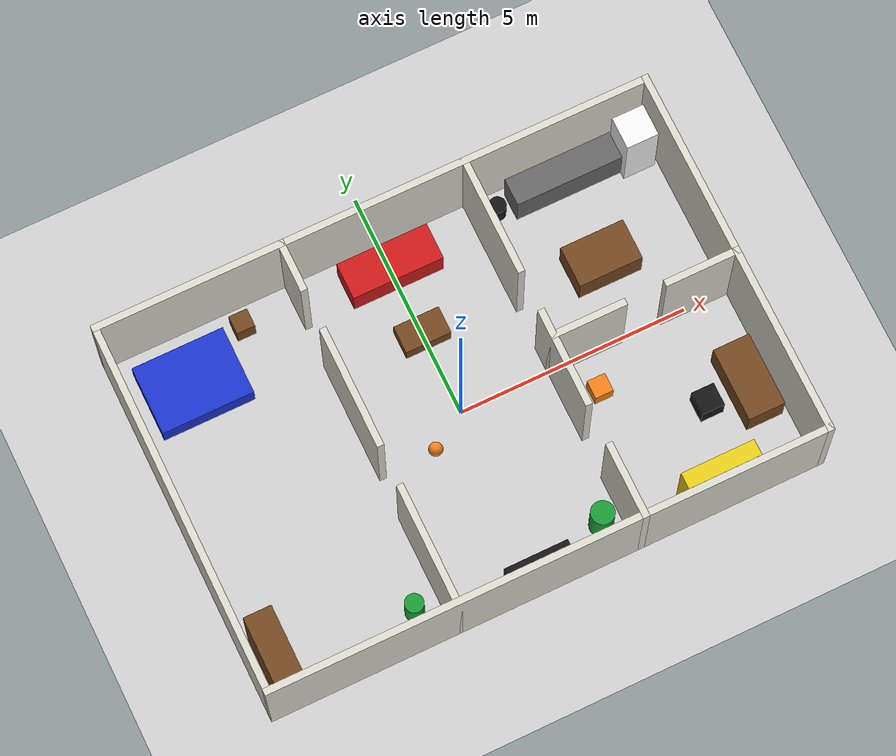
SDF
<?xml version="1.0"?>
<sdf version="1.6">
  <world name="indoor_house">
    <include><uri>model://sun</uri></include>
    <include><uri>model://ground_plane</uri></include>
    <physics type="ode">
      <max_step_size>0.004</max_step_size>
      <real_time_update_rate>250</real_time_update_rate>
    </physics>
    <scene><ambient>0.5 0.5 0.5 1</ambient><shadows>false</shadows></scene>
    <gravity>0 0 -9.8</gravity>
    <!-- ceiling-less so the sun lights the rooms -->
    <model name="wall_1">
      <static>true</static>
      <pose>0.0 4.0 1.25 0 0 0.0</pose>
      <link name="link">
        <collision name="c"><geometry><box><size>12.15 0.15 2.5</size></box></geometry></collision>
        <visual name="v"><geometry><box><size>12.15 0.15 2.5</size></box></geometry>
          <material><ambient>0.85 0.85 0.8 1</ambient><diffuse>0.85 0.85 0.8 1</diffuse></material></visual>
      </link>
    </model>
    <model name="wall_2">
      <static>true</static>
      <pose>0.0 -4.0 1.25 0 0 0.0</pose>
      <link name="link">
        <collision name="c"><geometry><box><size>12.15 0.15 2.5</size></box></geometry></collision>
        <visual name="v"><geometry><box><size>12.15 0.15 2.5</size></box></geometry>
          <material><ambient>0.85 0.85 0.8 1</ambient><diffuse>0.85 0.85 0.8 1</diffuse></material></visual>
      </link>
    </model>
    <model name="wall_3">
      <static>true</static>
      <pose>-6.0 0.0 1.25 0 0 0.0</pose>
      <link name="link">
        <collision name="c"><geometry><box><size>0.15 8.15 2.5</size></box></geometry></collision>
        <visual name="v"><geometry><box><size>0.15 8.15 2.5</size></box></geometry>
          <material><ambient>0.85 0.85 0.8 1</ambient><diffuse>0.85 0.85 0.8 1</diffuse></material></visual>
      </link>
    </model>
    <model name="wall_4">
      <static>true</static>
      <pose>6.0 0.0 1.25 0 0 0.0</pose>
      <link name="link">
        <collision name="c"><geometry><box><size>0.15 8.15 2.5</size></box></geometry></collision>
        <visual name="v"><geometry><box><size>0.15 8.15 2.5</size></box></geometry>
          <material><ambient>0.85 0.85 0.8 1</ambient><diffuse>0.85 0.85 0.8 1</diffuse></material></visual>
      </link>
    </model>
    <model name="wall_5">
      <static>true</static>
      <pose>-2.0 -2.75 1.25 0 0 0.0</pose>
      <link name="link">
        <collision name="c"><geometry><box><size>0.15 2.65 2.5</size></box></geometry></collision>
        <visual name="v"><geometry><box><size>0.15 2.65 2.5</size></box></geometry>
          <material><ambient>0.85 0.85 0.8 1</ambient><diffuse>0.85 0.85 0.8 1</diffuse></material></visual>
      </link>
    </model>
    <model name="wall_6">
      <static>true</static>
      <pose>-2.0 0.75 1.25 0 0 0.0</pose>
      <link name="link">
        <collision name="c"><geometry><box><size>0.15 2.65 2.5</size></box></geometry></collision>
        <visual name="v"><geometry><box><size>0.15 2.65 2.5</size></box></geometry>
          <material><ambient>0.85 0.85 0.8 1</ambient><diffuse>0.85 0.85 0.8 1</diffuse></material></visual>
      </link>
    </model>
    <model name="wall_7">
      <static>true</static>
      <pose>-2.0 3.5 1.25 0 0 0.0</pose>
      <link name="link">
        <collision name="c"><geometry><box><size>0.15 1.15 2.5</size></box></geometry></collision>
        <visual name="v"><geometry><box><size>0.15 1.15 2.5</size></box></geometry>
          <material><ambient>0.85 0.85 0.8 1</ambient><diffuse>0.85 0.85 0.8 1</diffuse></material></visual>
      </link>
    </model>
    <model name="wall_8">
      <static>true</static>
      <pose>2.0 -3.25 1.25 0 0 0.0</pose>
      <link name="link">
        <collision name="c"><geometry><box><size>0.15 1.65 2.5</size></box></geometry></collision>
        <visual name="v"><geometry><box><size>0.15 1.65 2.5</size></box></geometry>
          <material><ambient>0.85 0.85 0.8 1</ambient><diffuse>0.85 0.85 0.8 1</diffuse></material></visual>
      </link>
    </model>
    <model name="wall_9">
      <static>true</static>
      <pose>2.0 -0.5 1.25 0 0 0.0</pose>
      <link name="link">
        <collision name="c"><geometry><box><size>0.15 2.15 2.5</size></box></geometry></collision>
        <visual name="v"><geometry><box><size>0.15 2.15 2.5</size></box></geometry>
          <material><ambient>0.85 0.85 0.8 1</ambient><diffuse>0.85 0.85 0.8 1</diffuse></material></visual>
      </link>
    </model>
    <model name="wall_10">
      <static>true</static>
      <pose>2.0 2.75 1.25 0 0 0.0</pose>
      <link name="link">
        <collision name="c"><geometry><box><size>0.15 2.65 2.5</size></box></geometry></collision>
        <visual name="v"><geometry><box><size>0.15 2.65 2.5</size></box></geometry>
          <material><ambient>0.85 0.85 0.8 1</ambient><diffuse>0.85 0.85 0.8 1</diffuse></material></visual>
      </link>
    </model>
    <model name="wall_11">
      <static>true</static>
      <pose>2.75 0.0 1.25 0 0 0.0</pose>
      <link name="link">
        <collision name="c"><geometry><box><size>1.65 0.15 2.5</size></box></geometry></collision>
        <visual name="v"><geometry><box><size>1.65 0.15 2.5</size></box></geometry>
          <material><ambient>0.85 0.85 0.8 1</ambient><diffuse>0.85 0.85 0.8 1</diffuse></material></visual>
      </link>
    </model>
    <model name="wall_12">
      <static>true</static>
      <pose>5.25 0.0 1.25 0 0 0.0</pose>
      <link name="link">
        <collision name="c"><geometry><box><size>1.65 0.15 2.5</size></box></geometry></collision>
        <visual name="v"><geometry><box><size>1.65 0.15 2.5</size></box></geometry>
          <material><ambient>0.85 0.85 0.8 1</ambient><diffuse>0.85 0.85 0.8 1</diffuse></material></visual>
      </link>
    </model>
    <model name="bed">
      <static>true</static>
      <pose>-4.6 2.8 0.25 0 0 0.0</pose>
      <link name="link">
        <collision name="c"><geometry><box><size>2.0 1.5 0.5</size></box></geometry></collision>
        <visual name="v"><geometry><box><size>2.0 1.5 0.5</size></box></geometry>
          <material><ambient>0.1 0.2 0.8 1</ambient><diffuse>0.1 0.2 0.8 1</diffuse></material></visual>
      </link>
    </model>
    <model name="wardrobe">
      <static>true</static>
      <pose>-5.5 -3.2 1.0 0 0 0.0</pose>
      <link name="link">
        <collision name="c"><geometry><box><size>0.6 1.6 2.0</size></box></geometry></collision>
        <visual name="v"><geometry><box><size>0.6 1.6 2.0</size></box></geometry>
          <material><ambient>0.45 0.28 0.12 1</ambient><diffuse>0.45 0.28 0.12 1</diffuse></material></visual>
      </link>
    </model>
    <model name="nightstand">
      <static>true</static>
      <pose>-3.2 3.5 0.25 0 0 0.0</pose>
      <link name="link">
        <collision name="c"><geometry><box><size>0.4 0.4 0.5</size></box></geometry></collision>
        <visual name="v"><geometry><box><size>0.4 0.4 0.5</size></box></geometry>
          <material><ambient>0.45 0.28 0.12 1</ambient><diffuse>0.45 0.28 0.12 1</diffuse></material></visual>
      </link>
    </model>
    <model name="plant_bedroom">
      <static>true</static>
      <pose>-2.6 -3.3 0.4 0 0 0</pose>
      <link name="link">
        <collision name="c"><geometry><cylinder><radius>0.2</radius><length>0.8</length></cylinder></geometry></collision>
        <visual name="v"><geometry><cylinder><radius>0.2</radius><length>0.8</length></cylinder></geometry>
          <material><ambient>0.1 0.6 0.2 1</ambient><diffuse>0.1 0.6 0.2 1</diffuse></material></visual>
      </link>
    </model>
    <model name="sofa">
      <static>true</static>
      <pose>0.0 3.3 0.35 0 0 0.0</pose>
      <link name="link">
        <collision name="c"><geometry><box><size>2.0 0.8 0.7</size></box></geometry></collision>
        <visual name="v"><geometry><box><size>2.0 0.8 0.7</size></box></geometry>
          <material><ambient>0.8 0.1 0.1 1</ambient><diffuse>0.8 0.1 0.1 1</diffuse></material></visual>
      </link>
    </model>
    <model name="coffee_table">
      <static>true</static>
      <pose>0.0 1.8 0.2 0 0 0.0</pose>
      <link name="link">
        <collision name="c"><geometry><box><size>1.0 0.6 0.4</size></box></geometry></collision>
        <visual name="v"><geometry><box><size>1.0 0.6 0.4</size></box></geometry>
          <material><ambient>0.45 0.28 0.12 1</ambient><diffuse>0.45 0.28 0.12 1</diffuse></material></visual>
      </link>
    </model>
    <model name="tv_stand">
      <static>true</static>
      <pose>0.0 -3.6 0.3 0 0 0.0</pose>
      <link name="link">
        <collision name="c"><geometry><box><size>1.4 0.4 0.6</size></box></geometry></collision>
        <visual name="v"><geometry><box><size>1.4 0.4 0.6</size></box></geometry>
          <material><ambient>0.08 0.08 0.08 1</ambient><diffuse>0.08 0.08 0.08 1</diffuse></material></visual>
      </link>
    </model>
    <model name="plant_living">
      <static>true</static>
      <pose>1.5 -3.3 0.5 0 0 0</pose>
      <link name="link">
        <collision name="c"><geometry><cylinder><radius>0.25</radius><length>1.0</length></cylinder></geometry></collision>
        <visual name="v"><geometry><cylinder><radius>0.25</radius><length>1.0</length></cylinder></geometry>
          <material><ambient>0.1 0.6 0.2 1</ambient><diffuse>0.1 0.6 0.2 1</diffuse></material></visual>
      </link>
    </model>
    <model name="ball">
      <static>true</static>
      <pose>-0.8 -0.5 0.15 0 0 0</pose>
      <link name="link">
        <collision name="c"><geometry><sphere><radius>0.15</radius></sphere></geometry></collision>
        <visual name="v"><geometry><sphere><radius>0.15</radius></sphere></geometry>
          <material><ambient>0.95 0.5 0.1 1</ambient><diffuse>0.95 0.5 0.1 1</diffuse></material></visual>
      </link>
    </model>
    <model name="fridge">
      <static>true</static>
      <pose>5.5 3.4 0.9 0 0 0.0</pose>
      <link name="link">
        <collision name="c"><geometry><box><size>0.7 0.7 1.8</size></box></geometry></collision>
        <visual name="v"><geometry><box><size>0.7 0.7 1.8</size></box></geometry>
          <material><ambient>0.95 0.95 0.95 1</ambient><diffuse>0.95 0.95 0.95 1</diffuse></material></visual>
      </link>
    </model>
    <model name="kitchen_counter">
      <static>true</static>
      <pose>4.0 3.5 0.45 0 0 0.0</pose>
      <link name="link">
        <collision name="c"><geometry><box><size>2.4 0.6 0.9</size></box></geometry></collision>
        <visual name="v"><geometry><box><size>2.4 0.6 0.9</size></box></geometry>
          <material><ambient>0.4 0.4 0.4 1</ambient><diffuse>0.4 0.4 0.4 1</diffuse></material></visual>
      </link>
    </model>
    <model name="dining_table">
      <static>true</static>
      <pose>3.9 1.6 0.375 0 0 0.0</pose>
      <link name="link">
        <collision name="c"><geometry><box><size>1.4 0.9 0.75</size></box></geometry></collision>
        <visual name="v"><geometry><box><size>1.4 0.9 0.75</size></box></geometry>
          <material><ambient>0.45 0.28 0.12 1</ambient><diffuse>0.45 0.28 0.12 1</diffuse></material></visual>
      </link>
    </model>
    <model name="trash_bin">
      <static>true</static>
      <pose>2.5 3.5 0.25 0 0 0</pose>
      <link name="link">
        <collision name="c"><geometry><cylinder><radius>0.18</radius><length>0.5</length></cylinder></geometry></collision>
        <visual name="v"><geometry><cylinder><radius>0.18</radius><length>0.5</length></cylinder></geometry>
          <material><ambient>0.08 0.08 0.08 1</ambient><diffuse>0.08 0.08 0.08 1</diffuse></material></visual>
      </link>
    </model>
    <model name="desk">
      <static>true</static>
      <pose>5.4 -2.0 0.375 0 0 0.0</pose>
      <link name="link">
        <collision name="c"><geometry><box><size>0.8 1.6 0.75</size></box></geometry></collision>
        <visual name="v"><geometry><box><size>0.8 1.6 0.75</size></box></geometry>
          <material><ambient>0.45 0.28 0.12 1</ambient><diffuse>0.45 0.28 0.12 1</diffuse></material></visual>
      </link>
    </model>
    <model name="office_chair">
      <static>true</static>
      <pose>4.5 -2.0 0.25 0 0 0.0</pose>
      <link name="link">
        <collision name="c"><geometry><box><size>0.5 0.5 0.5</size></box></geometry></collision>
        <visual name="v"><geometry><box><size>0.5 0.5 0.5</size></box></geometry>
          <material><ambient>0.08 0.08 0.08 1</ambient><diffuse>0.08 0.08 0.08 1</diffuse></material></visual>
      </link>
    </model>
    <model name="bookshelf">
      <static>true</static>
      <pose>3.9 -3.6 0.9 0 0 0.0</pose>
      <link name="link">
        <collision name="c"><geometry><box><size>1.6 0.35 1.8</size></box></geometry></collision>
        <visual name="v"><geometry><box><size>1.6 0.35 1.8</size></box></geometry>
          <material><ambient>0.9 0.8 0.1 1</ambient><diffuse>0.9 0.8 0.1 1</diffuse></material></visual>
      </link>
    </model>
    <model name="box_cardboard">
      <static>true</static>
      <pose>2.7 -0.8 0.2 0 0 0.0</pose>
      <link name="link">
        <collision name="c"><geometry><box><size>0.4 0.4 0.4</size></box></geometry></collision>
        <visual name="v"><geometry><box><size>0.4 0.4 0.4</size></box></geometry>
          <material><ambient>0.95 0.5 0.1 1</ambient><diffuse>0.95 0.5 0.1 1</diffuse></material></visual>
      </link>
    </model>
  </world>
</sdf>
